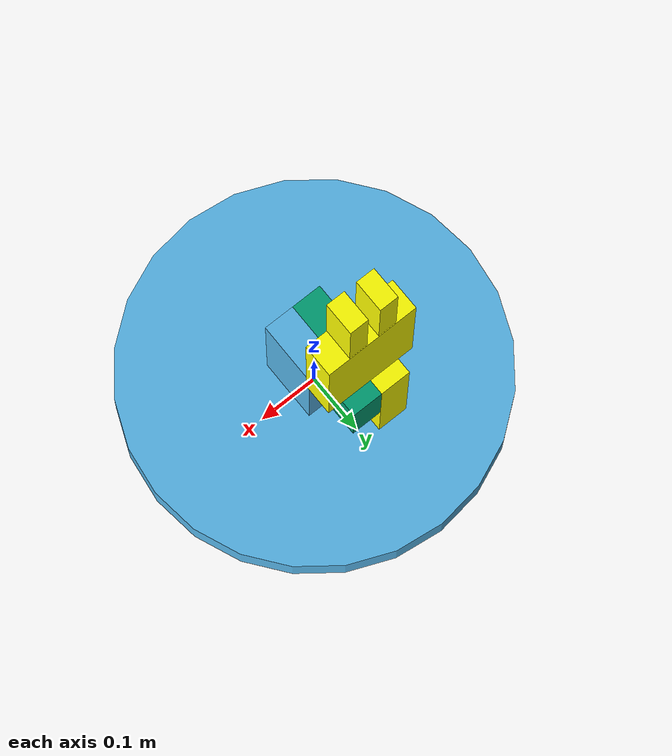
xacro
<?xml version="1.0" encoding="utf-8"?>

<robot xmlns:xacro="http://ros.org/wiki/xacro" name="full_model">

    <xacro:macro name="combined_model">
        <xacro:include filename="$(find urdf_model)/urdf/model.urdf.xacro"/>
        <xacro:include filename="$(find urdf_model)/urdf/grip.urdf.xacro"/>

        <xacro:rotating_base/>
        <xacro:gripper/>

        <joint name="attachment" type="fixed">
            <origin xyz="0.0 0.1 0.125" rpy="0.0 0.0 0.0"/>
            <parent link="inter_1"/>
            <child link="base"/>
        </joint>
    </xacro:macro>

    <xacro:combined_model/>

</robot>

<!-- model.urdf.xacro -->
<robot xmlns:xacro="http://ros.org/wiki/xacro" name="skeleton">

  <xacro:macro name="rotating_base" >

    <link name="base_frame">
        <origin xyz="0.0 0.0 0.0" rpy="0.0 0.0 0.0"/>
    </link>

    <link name="base_link">
        <origin xyz="0.0 0.0 0.0" rpy="0.0 0.0 0.0"/>
        <visual>
            <origin rpy="0 0 0" xyz="0 0 0.025"/>
            <geometry>
                <cylinder length="0.05" radius="0.3"/>
            </geometry>
        </visual>
        <visual>
            <origin rpy="0 0 0" xyz="0.025 0 0.15"/>
            <geometry>
                <box size="0.05 0.1 0.2"/>
            </geometry>
        </visual>
        <collision>
            <geometry>
                <cylinder length="0.05" radius="0.025"/>
            <origin rpy="0 0 0" xyz="0 0 0"/>
            </geometry>
        </collision>
        <inertial>
            <mass value="0.1"/>
            <inertia ixx="0.067" ixy="0.0" ixz="0.0" iyy="0.067" iyz="0.0" izz="0.035"/>
        </inertial>

    </link>

    <joint name="mounting" type="fixed">
        <origin xyz="0.0 0.0 0.0" rpy="0.0 0.0 0.0"/>
        <parent link="base_frame"/>
        <child link="base_link"/>
    </joint>

    <link name="inter_1">
        <origin xyz="0.0 0.0 0.0" rpy="0.0 0.0 0.0"/>

        <visual>
        <origin rpy="0 0 0" xyz="-0.025 0.1 0"/>
        <geometry>
                <box size="0.05 0.1 0.2"/>
        </geometry>
        <material name="yellow">
            <color rgba="1 1 0 1"/>
        </material>
        </visual>

        <visual>
            <origin rpy="0 0 0" xyz="-0.0250 0 -0.05"/>
            <geometry>
                <box size="0.05 0.1 0.1"/>
            </geometry>
        </visual>

        <visual>
            <origin rpy="0 0 0" xyz="0.025 0.1 0.05"/>
            <geometry>
                <box size = "0.05 0.1 0.1"/>
            </geometry>
        </visual>
        <inertial>
            <mass value="0.1"/>
            <inertia ixx="0.067" ixy="0.0" ixz="0.0" iyy="0.067" iyz="0.0" izz="0.035"/>
        </inertial>
    </link>

    <joint name="rev_1" type="revolute">
        <origin xyz="0 0 0.25" rpy="0 0 0 "/>
        <parent link= "base_link"/>
        <child link = "inter_1"/>
        <axis xyz="1 0 0"/>
        <limit effort="30" velocity="1.0" lower="-0.45" upper="0.45" />
    </joint>
  </xacro:macro>

</robot>

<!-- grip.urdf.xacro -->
<robot xmlns:xacro="http://ros.org/wiki/xacro" name="grip">

    <xacro:macro name="gripper">

    <link name="base">
        <origin xyz="0.0 0.0 0.0" rpy="0.0 0.0 0.0"/>

    </link>

    <link name="grip_body">
        <visual>
            <origin rpy="0 0 0" xyz="0 0 0.075"/>
            <geometry>
                <box size="0.15 0.05 0.2"/>
            </geometry>
            <material name="yellow">
                <color rgba="1 1 0 1"/>
            </material>
        </visual>
        <inertial>
            <mass value="0.1"/>
            <inertia ixx="0.0067" ixy="0.0" ixz="0.0" iyy="0.0067" iyz="0.0" izz="0.0035"/>
        </inertial>
        <collision>
            <origin rpy="0 0 0" xyz="0 0 0.075"/>
            <geometry>
                <box size="0.15 0.05 0.2"/>
            </geometry>
        </collision>
    </link>

    <joint name="base_joint" type="fixed">
        <origin xyz="0.0 0.0 0.0" rpy="0.0 0.0 0.0"/>
        <parent link="base"/>
        <child link="grip_body"/>

    </joint>

    <link name="right_finger">
        <visual>
            <origin rpy="0 0 0" xyz="0 0 0.06"/>
            <geometry>
                <box size="0.03 0.05 0.12"/>
            </geometry>
            <material name="yellow">
                <color rgba="1 1 0 1"/>
            </material>

        </visual>
        <collision>
            <origin rpy="0 0 0" xyz="0 0 0.06"/>
            <geometry>
                <box size="0.03 0.05 0.12"/>
            </geometry>
        </collision>
        <inertial>
            <mass value="0.1"/>
            <inertia ixx="0.0067" ixy="0.0" ixz="0.0" iyy="0.0067" iyz="0.0" izz="0.0035"/>
        </inertial>
    </link>

    <joint name="slide_right" type="prismatic">
        <origin xyz="0.025 0 0.18" rpy="0 0 0 "/>
        <parent link= "grip_body"/>
        <child link = "right_finger"/>
        <axis xyz="1 0 0"/>
        <limit effort="30" velocity="1.0" lower="0" upper="0.05" />
        <dynamics damping="0.0" friction="0.0"/>
    </joint>

    <link name="left_finger">
        <visual>
            <origin rpy="0 0 0" xyz="0 0 0.06"/>
            <geometry>
                <box size="0.03 0.05 0.12"/>
            </geometry>
            <material name="yellow">
                <color rgba="1 1 0 1"/>
            </material>
        </visual>
        <inertial>
            <mass value="0.1"/>
            <inertia ixx="0.0067" ixy="0.0" ixz="0.0" iyy="0.0067" iyz="0.0" izz="0.0035"/>
        </inertial>

        <collision>
            <origin rpy="0 0 0" xyz="-0 0 0.06"/>
            <geometry>
                <box size="0.03 0.05 0.12"/>
            </geometry>
        </collision>

    </link>

    <joint name="slide_left" type="prismatic">
        <origin xyz="-0.025 0 0.18" rpy="0 0 0 "/>
        <parent link= "grip_body"/>
        <child link = "left_finger"/>
        <axis xyz="-1 0 0"/>
        <limit effort="30" velocity="1.0" lower="0" upper="0.05" />
        <dynamics damping="0.0" friction="0.0"/>
    </joint>

    </xacro:macro>

</robot>
